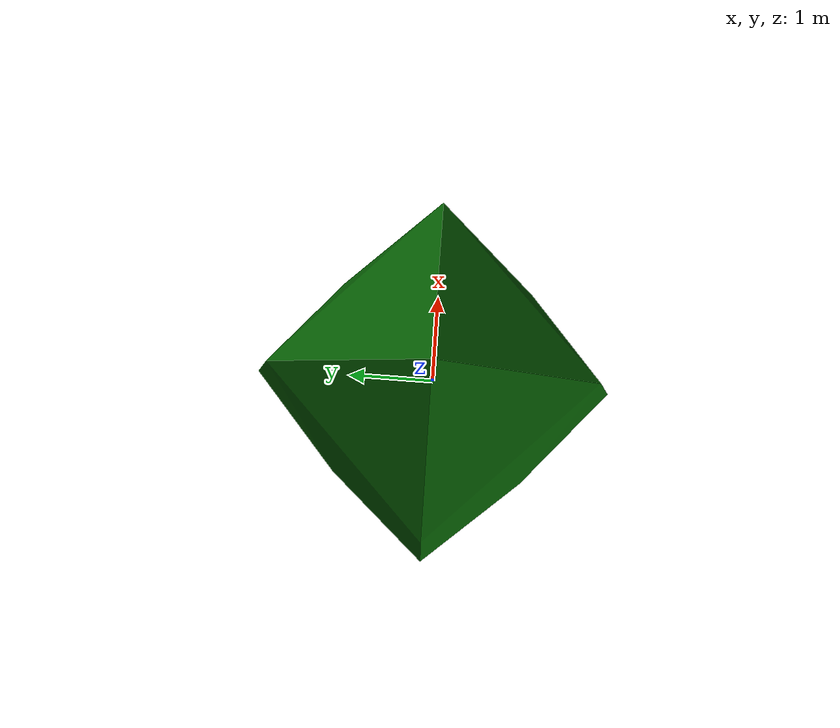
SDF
<?xml version='1.0' ?>
<sdf version='1.6'>
  <model name='Simple Pyramid'>
    <pose>0 0 0 0 0 0</pose>
    <static>true</static>
    <link name="link">
      <collision name="collision">
        <geometry>
          <mesh>
            <uri>model://Simple Pyramid/meshes/Simple Pyramid.dae</uri>
            <scale>1 1 1</scale>
         </mesh>
        </geometry>
      </collision>
      <visual name="visual">
        <geometry>
          <mesh>
            <uri>model://Simple Pyramid/meshes/Simple Pyramid.dae</uri>
            <scale>1 1 1</scale>
         </mesh>
        </geometry>
      </visual>
    </link>
  </model>
 </sdf>
